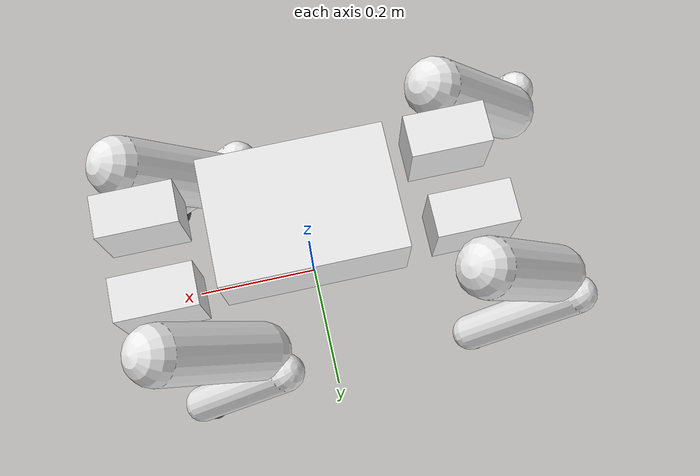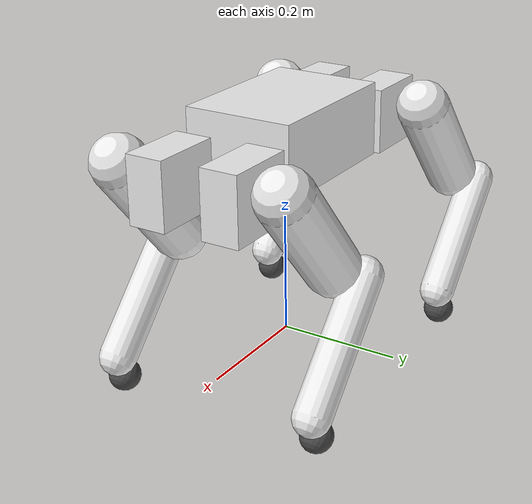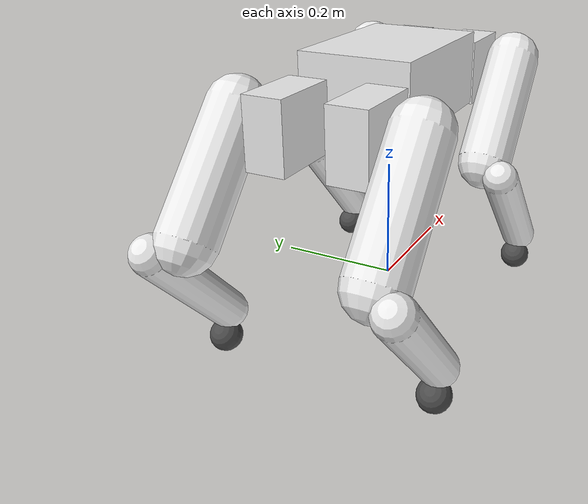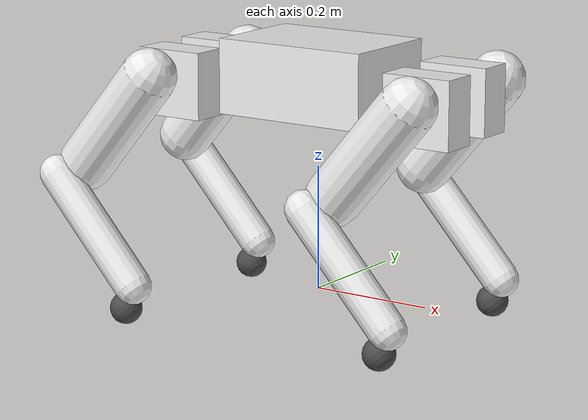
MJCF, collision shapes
<mujoco model="dog3">
  <option timestep="0.005" gravity="0 0 -9.81" />

  <compiler angle="radian" meshdir="../meshes" eulerseq="zyx" autolimits="true" />

  <default>
    <joint limited="true" damping="0.0" armature="0.05" frictionloss="0.0" />
    <geom condim="4" contype="1" conaffinity="15" friction="0.9 0.2 0.2" solref="0.001 2" />
    <motor ctrllimited="true" />
    <equality solref="0.001 2" />
    <default class="robot_collision">
      <geom condim="4" contype="2" conaffinity="1" friction="0.9 0.2 0.2" solref="0.001 2" />
    </default>

    <default class="visualgeom">
      <geom material="visualgeom" condim="1" contype="0" conaffinity="0" group="2" />
    </default>
  </default>

  <asset>
    <mesh name="base_link" content_type="model/stl" file="base_link.STL" />
    <mesh name="FR_hip" content_type="model/stl" file="FR_hip.STL" />
    <mesh name="FR_thigh" content_type="model/stl" file="FR_thigh.STL" />
    <mesh name="FR_calf" content_type="model/stl" file="FR_calf.STL" />
    <mesh name="RF_FOOT" content_type="model/stl" file="RF_FOOT.STL" />
    <mesh name="FL_hip" content_type="model/stl" file="FL_hip.STL" />
    <mesh name="FL_thigh" content_type="model/stl" file="FL_thigh.STL" />
    <mesh name="FL_calf" content_type="model/stl" file="FL_calf.STL" />
    <mesh name="LF_FOOT" content_type="model/stl" file="LF_FOOT.STL" />
    <mesh name="RL_hip" content_type="model/stl" file="RL_hip.STL" />
    <mesh name="RL_thigh" content_type="model/stl" file="RL_thigh.STL" />
    <mesh name="RL_calf" content_type="model/stl" file="RL_calf.STL" />
    <mesh name="LH_FOOT" content_type="model/stl" file="LH_FOOT.STL" />
    <mesh name="RR_hip" content_type="model/stl" file="RR_hip.STL" />
    <mesh name="RR_thigh" content_type="model/stl" file="RR_thigh.STL" />
    <mesh name="RR_calf" content_type="model/stl" file="RR_calf.STL" />
    <mesh name="RH_FOOT" content_type="model/stl" file="RH_FOOT.STL" />
    <texture name="texplane" type="2d" builtin="checker" rgb1="0.25 0.35 0.45" rgb2="0.13 0.2 0.28" markrgb="0.8 0.8 0.8" width="300" height="300" />
    <material name="matplane" reflectance="0.1" texture="texplane" texrepeat="5 5" texuniform="true" />
    <material name="visualgeom" rgba="0.5 0.9 0.2 1" />
  </asset>

  <worldbody>
    <body name="base_link" pos="0 0 0.33" quat="1 0 0 0">
      <freejoint name="base_freejoint" />
      <site name="trunk_imu" size="0.01" pos="0 0 0" />
      <geom type="mesh" rgba="0.92549 0.92549 0.92549 1" mesh="base_link" contype="0" conaffinity="0" density="0" group="2" class="visualgeom" />
<geom type="box" size="0.130 0.090 0.060" pos="0.00202 0.00034 0.01493" rgba="0.93 0.93 0.93 1" group="3" class="robot_collision" />
      <geom size="0.0075 0.0075 0.002" type="box" rgba="1.0 0.4235 0.0392 1.0" contype="0" conaffinity="0" density="0" group="2" class="visualgeom" />
      <geom type="box" rgba="1.0 0.4235 0.0392 1.0" size="0.0075 0.0075 0.002" group="3" class="robot_collision" />
      <body name="FR_hip" pos="0.170121 -0.0491355 0.00073677">
        <inertial pos="0.061 0.0027 -0.0003" quat="0.48672 0.48672 0.512936 0.512936" mass="0.9106" diaginertia="0.0045105 0.0043 0.000689503" />
        <joint name="FR_hip_joint" range="-0.5 0.5" actuatorfrcrange="-20 20" axis="1 0 0" />
        <geom type="mesh" rgba="0.92549 0.92549 0.92549 1" mesh="FR_hip" contype="0" conaffinity="0" density="0" group="2" class="visualgeom" />
<geom type="box" size="0.0580 0.0308 0.0540" pos="0.05696 0.00025 -0.00599" rgba="0.93 0.93 0.93 1" group="3" class="robot_collision" />
        <body name="FR_thigh" pos="0.067 -0.0295007 1.32301e-05" quat="0.93937271 0 0.34289781 0">
          <inertial pos="-0.0015 -0.0495 -0.0136" quat="0.436677 0.895099 0.0523788 -0.0732582" mass="1.4967" diaginertia="0.00928385 0.00752389 0.00379226" />
          <joint name="FR_thigh_joint" range="-2.2000 2.0000" actuatorfrcrange="-20 20" axis="0 1 0" />
          <geom type="mesh" rgba="0.86667 0.9098 1 1" mesh="FR_thigh" contype="0" conaffinity="0" density="0" group="2" class="visualgeom" />
<geom type="capsule" fromto="-0.00282 -0.04840 -0.18997 -0.00282 -0.04840 0.01420" size="0.045" rgba="0.93 0.93 0.93 1" group="3" class="robot_collision" />
          <body name="FR_calf" pos="0 -0.1168 -0.215" quat="0.75180573 0 -0.65938467 0">
            <inertial pos="-0.00261224 0.0302934 -0.0945979" quat="0.949452 0.0437488 0.0624737 -0.304506" mass="0.426" diaginertia="0.00635258 0.00601295 0.000409497" />
            <joint name="FR_calf_joint" range="-1.3600 0.2400" actuatorfrcrange="-20 20" axis="0 1 0" />
            <geom type="mesh" rgba="0.92549 0.92549 0.92549 1" mesh="FR_calf" contype="0" conaffinity="0" density="0" group="2" class="visualgeom" />
<geom type="capsule" fromto="-0.00472 0.03040 -0.20905 -0.00472 0.03040 0.01492" size="0.03" rgba="0.93 0.93 0.93 1" group="3" class="robot_collision" />
            <geom pos="-0.0618979 0.0301588 -0.242542" quat="1 0 0 0" type="mesh" rgba="0.29804 0.29804 0.29804 1" mesh="RF_FOOT" contype="0" conaffinity="0" density="0" group="2" class="visualgeom" />
<geom type="sphere" size="0.026" pos="-0.04071 0.03017 -0.22777" rgba="0.3 0.3 0.3 1" group="3" class="robot_collision" />
          </body>
        </body>
      </body>
      <body name="FL_hip" pos="0.162386 0.0706132 0.000763214">
        <inertial pos="0.0608 -0.0027 -0.0001" quat="0.512936 0.512936 0.48672 0.48672" mass="0.9118" diaginertia="0.0045105 0.0042 0.000689503" />
        <joint name="FL_hip_joint" range="-0.5 0.5" actuatorfrcrange="-20 20" axis="1 0 0" />
        <geom type="mesh" rgba="0.92549 0.92549 0.92549 1" mesh="FL_hip" contype="0" conaffinity="0" density="0" group="2" class="visualgeom" />
<geom type="box" size="0.0580 0.0308 0.0540" pos="0.05697 -0.00025 -0.00601" rgba="0.93 0.93 0.93 1" group="3" class="robot_collision" />
        <body name="FL_thigh" pos="0.067 0.029501 -1.32139e-05" quat="0.93937271 0 0.34289781 0">
          <inertial pos="-0.0042 0.0496 -0.0141" quat="0.896644 0.437425 0.0684038 0.00304201" mass="1.497" diaginertia="0.00929353 0.00765975 0.00364672" />
          <joint name="FL_thigh_joint" range="-2.2000 2.0000" actuatorfrcrange="-20 20" axis="0 1 0" />
          <geom type="mesh" rgba="0.86667 0.9098 1 1" mesh="FL_thigh" contype="0" conaffinity="0" density="0" group="2" class="visualgeom" />
<geom type="capsule" fromto="-0.00282 0.04850 -0.18997 -0.00282 0.04850 0.01420" size="0.045" rgba="0.93 0.93 0.93 1" group="3" class="robot_collision" />
          <body name="FL_calf" pos="0 0.1168 -0.215" quat="0.75180573 0 -0.65938467 0">
            <inertial pos="-0.00261224 -0.0303066 -0.0945979" quat="0.949431 -0.0438084 0.0624957 0.304557" mass="0.426" diaginertia="0.00635249 0.00601323 0.000409309" />
            <joint name="FL_calf_joint" range="-1.3600 0.2400" actuatorfrcrange="-20 20" axis="0 1 0" />
            <geom type="mesh" rgba="0.92549 0.92549 0.92549 1" mesh="FL_calf" contype="0" conaffinity="0" density="0" group="2" class="visualgeom" />
<geom type="capsule" fromto="-0.00472 -0.03040 -0.20905 -0.00472 -0.03040 0.01492" size="0.03" rgba="0.93 0.93 0.93 1" group="3" class="robot_collision" />
            <geom pos="-0.0618979 -0.0304412 -0.242542" quat="1 0 0 0" type="mesh" rgba="0.29804 0.29804 0.29804 1" mesh="LF_FOOT" contype="0" conaffinity="0" density="0" group="2" class="visualgeom" />
<geom type="sphere" size="0.026" pos="-0.04071 -0.03043 -0.22777" rgba="0.3 0.3 0.3 1" group="3" class="robot_collision" />
          </body>
        </body>
      </body>
      <body name="RL_hip" pos="-0.17012 0.0491231 0.000750807">
        <inertial pos="-0.0609 -0.0027 -0.0002" quat="0.48672 0.48672 0.512936 0.512936" mass="0.9106" diaginertia="0.0045105 0.0042 0.000689503" />
        <joint name="RL_hip_joint" range="-0.5 0.5" actuatorfrcrange="-20 20" axis="1 0 0" />
        <geom type="mesh" rgba="0.92549 0.92549 0.92549 1" mesh="RL_hip" contype="0" conaffinity="0" density="0" group="2" class="visualgeom" />
<geom type="box" size="0.0580 0.0308 0.0539" pos="-0.05700 -0.00024 -0.00606" rgba="0.93 0.93 0.93 1" group="3" class="robot_collision" />
        <body name="RL_thigh" pos="-0.067 0.0295132 0" quat="0.93937271 0 0.34289781 0">
          <inertial pos="-0.0029 0.0501 -0.0166" quat="0.916449 0.397533 0.0437646 0.0132057" mass="1.5164" diaginertia="0.0101517 0.0083549 0.00389339" />
          <joint name="RL_thigh_joint" range="-2.2000 2.0000" actuatorfrcrange="-20 20" axis="0 1 0" />
          <geom type="mesh" rgba="0.86667 0.9098 1 1" mesh="RL_thigh" contype="0" conaffinity="0" density="0" group="2" class="visualgeom" />
<geom type="capsule" fromto="-0.00282 0.04895 -0.18997 -0.00282 0.04895 0.01420" size="0.045" rgba="0.93 0.93 0.93 1" group="3" class="robot_collision" />
          <body name="RL_calf" pos="0 0.1168 -0.215" quat="0.75180573 0 -0.65938467 0">
            <inertial pos="-0.00205703 -0.0304634 -0.0920502" quat="0.949818 -0.0427825 0.0629033 0.303411" mass="0.426" diaginertia="0.0064667 0.00612608 0.000409081" />
            <joint name="RL_calf_joint" range="-1.3600 0.2400" actuatorfrcrange="-20 20" axis="0 1 0" />
            <geom type="mesh" rgba="0.92549 0.92549 0.92549 1" mesh="RL_calf" contype="0" conaffinity="0" density="0" group="2" class="visualgeom" />
<geom type="capsule" fromto="-0.00472 -0.03040 -0.20905 -0.00472 -0.03040 0.01492" size="0.03" rgba="0.93 0.93 0.93 1" group="3" class="robot_collision" />
            <geom pos="-0.0615777 -0.0308961 -0.244991" quat="1 0 0 0" type="mesh" rgba="0.29804 0.29804 0.29804 1" mesh="LH_FOOT" contype="0" conaffinity="0" density="0" group="2" class="visualgeom" />
<geom type="sphere" size="0.026" pos="-0.04039 -0.03088 -0.23021" rgba="0.3 0.3 0.3 1" group="3" class="robot_collision" />
          </body>
        </body>
      </body>
      <body name="RR_hip" pos="-0.162385 -0.0706232 0.000740359">
        <inertial pos="-0.0611 0.0027 0.0002" quat="0.512936 0.512936 0.48672 0.48672" mass="0.9106" diaginertia="0.0045105 0.0043 0.000689503" />
        <joint name="RR_hip_joint" range="-0.5 0.5" actuatorfrcrange="-20 20" axis="1 0 0" />
        <geom type="mesh" rgba="0.92549 0.92549 0.92549 1" mesh="RR_hip" contype="0" conaffinity="0" density="0" group="2" class="visualgeom" />
<geom type="box" size="0.0580 0.0308 0.0540" pos="-0.05697 0.00026 -0.00599" rgba="0.93 0.93 0.93 1" group="3" class="robot_collision" />
        <body name="RR_thigh" pos="-0.067 -0.0294909 0" quat="0.93937271 0 0.34289781 0">
          <inertial pos="-0.0033 -0.0494 -0.014" quat="0.434907 0.89866 -0.0239354 -0.051889" mass="1.4967" diaginertia="0.00927353 0.00760255 0.00362391" />
          <joint name="RR_thigh_joint" range="-2.2000 2.0000" actuatorfrcrange="-20 20" axis="0 1 0" />
          <geom type="mesh" rgba="0.86667 0.9098 1 1" mesh="RR_thigh" contype="0" conaffinity="0" density="0" group="2" class="visualgeom" />
<geom type="capsule" fromto="-0.00282 -0.04850 -0.18997 -0.00282 -0.04850 0.01420" size="0.045" rgba="0.93 0.93 0.93 1" group="3" class="robot_collision" />
          <body name="RR_calf" pos="0 -0.1168 -0.215" quat="0.75180573 0 -0.65938467 0">
            <inertial pos="-0.00261224 0.0302934 -0.0945979" quat="0.949452 0.0437488 0.0624737 -0.304506" mass="0.426" diaginertia="0.00635258 0.00601295 0.000409497" />
            <joint name="RR_calf_joint" range="-1.3600 0.2400" actuatorfrcrange="-20 20" axis="0 1 0" />
            <geom type="mesh" rgba="0.92549 0.92549 0.92549 1" mesh="RR_calf" contype="0" conaffinity="0" density="0" group="2" class="visualgeom" />
<geom type="capsule" fromto="-0.00472 0.03040 -0.20905 -0.00472 0.03040 0.01492" size="0.03" rgba="0.93 0.93 0.93 1" group="3" class="robot_collision" />
            <geom pos="-0.0618979 0.0301588 -0.242542" quat="1 0 0 0" type="mesh" rgba="0.29804 0.29804 0.29804 1" mesh="RH_FOOT" contype="0" conaffinity="0" density="0" group="2" class="visualgeom" />
<geom type="sphere" size="0.026" pos="-0.04071 0.03017 -0.22777" rgba="0.3 0.3 0.3 1" group="3" class="robot_collision" />
          </body>
        </body>
      </body>
    </body>
  </worldbody>

  <actuator>
    <motor name="FR_hip_joint" joint="FR_hip_joint" ctrllimited="true" ctrlrange="-20 20" gear="1" />
    <motor name="FR_thigh_joint" joint="FR_thigh_joint" ctrllimited="true" ctrlrange="-20 20" gear="1" />
    <motor name="FR_calf_joint" joint="FR_calf_joint" ctrllimited="true" ctrlrange="-20 20" gear="1" />
    <motor name="FL_hip_joint" joint="FL_hip_joint" ctrllimited="true" ctrlrange="-20 20" gear="1" />
    <motor name="FL_thigh_joint" joint="FL_thigh_joint" ctrllimited="true" ctrlrange="-20 20" gear="1" />
    <motor name="FL_calf_joint" joint="FL_calf_joint" ctrllimited="true" ctrlrange="-20 20" gear="1" />
    <motor name="RL_hip_joint" joint="RL_hip_joint" ctrllimited="true" ctrlrange="-20 20" gear="1" />
    <motor name="RL_thigh_joint" joint="RL_thigh_joint" ctrllimited="true" ctrlrange="-20 20" gear="1" />
    <motor name="RL_calf_joint" joint="RL_calf_joint" ctrllimited="true" ctrlrange="-20 20" gear="1" />
    <motor name="RR_hip_joint" joint="RR_hip_joint" ctrllimited="true" ctrlrange="-20 20" gear="1" />
    <motor name="RR_thigh_joint" joint="RR_thigh_joint" ctrllimited="true" ctrlrange="-20 20" gear="1" />
    <motor name="RR_calf_joint" joint="RR_calf_joint" ctrllimited="true" ctrlrange="-20 20" gear="1" />
  </actuator>

  <sensor>
    <actuatorpos name="FR_hip_joint_p" actuator="FR_hip_joint" />
    <actuatorvel name="FR_hip_joint_v" actuator="FR_hip_joint" />
    <actuatorfrc name="FR_hip_joint_f" actuator="FR_hip_joint" noise="0.001" />
    <actuatorpos name="FR_thigh_joint_p" actuator="FR_thigh_joint" />
    <actuatorvel name="FR_thigh_joint_v" actuator="FR_thigh_joint" />
    <actuatorfrc name="FR_thigh_joint_f" actuator="FR_thigh_joint" noise="0.001" />
    <actuatorpos name="FR_calf_joint_p" actuator="FR_calf_joint" />
    <actuatorvel name="FR_calf_joint_v" actuator="FR_calf_joint" />
    <actuatorfrc name="FR_calf_joint_f" actuator="FR_calf_joint" noise="0.001" />
    <actuatorpos name="FL_hip_joint_p" actuator="FL_hip_joint" />
    <actuatorvel name="FL_hip_joint_v" actuator="FL_hip_joint" />
    <actuatorfrc name="FL_hip_joint_f" actuator="FL_hip_joint" noise="0.001" />
    <actuatorpos name="FL_thigh_joint_p" actuator="FL_thigh_joint" />
    <actuatorvel name="FL_thigh_joint_v" actuator="FL_thigh_joint" />
    <actuatorfrc name="FL_thigh_joint_f" actuator="FL_thigh_joint" noise="0.001" />
    <actuatorpos name="FL_calf_joint_p" actuator="FL_calf_joint" />
    <actuatorvel name="FL_calf_joint_v" actuator="FL_calf_joint" />
    <actuatorfrc name="FL_calf_joint_f" actuator="FL_calf_joint" noise="0.001" />
    <actuatorpos name="RL_hip_joint_p" actuator="RL_hip_joint" />
    <actuatorvel name="RL_hip_joint_v" actuator="RL_hip_joint" />
    <actuatorfrc name="RL_hip_joint_f" actuator="RL_hip_joint" noise="0.001" />
    <actuatorpos name="RL_thigh_joint_p" actuator="RL_thigh_joint" />
    <actuatorvel name="RL_thigh_joint_v" actuator="RL_thigh_joint" />
    <actuatorfrc name="RL_thigh_joint_f" actuator="RL_thigh_joint" noise="0.001" />
    <actuatorpos name="RL_calf_joint_p" actuator="RL_calf_joint" />
    <actuatorvel name="RL_calf_joint_v" actuator="RL_calf_joint" />
    <actuatorfrc name="RL_calf_joint_f" actuator="RL_calf_joint" noise="0.001" />
    <actuatorpos name="RR_hip_joint_p" actuator="RR_hip_joint" />
    <actuatorvel name="RR_hip_joint_v" actuator="RR_hip_joint" />
    <actuatorfrc name="RR_hip_joint_f" actuator="RR_hip_joint" noise="0.001" />
    <actuatorpos name="RR_thigh_joint_p" actuator="RR_thigh_joint" />
    <actuatorvel name="RR_thigh_joint_v" actuator="RR_thigh_joint" />
    <actuatorfrc name="RR_thigh_joint_f" actuator="RR_thigh_joint" noise="0.001" />
    <actuatorpos name="RR_calf_joint_p" actuator="RR_calf_joint" />
    <actuatorvel name="RR_calf_joint_v" actuator="RR_calf_joint" />
    <actuatorfrc name="RR_calf_joint_f" actuator="RR_calf_joint" noise="0.001" />
    <framequat name="trunk_quat" objtype="site" objname="trunk_imu" />
    <gyro name="trunk_gyro" site="trunk_imu" />
    <accelerometer name="trunk_accel" site="trunk_imu" />
  </sensor>
</mujoco>
